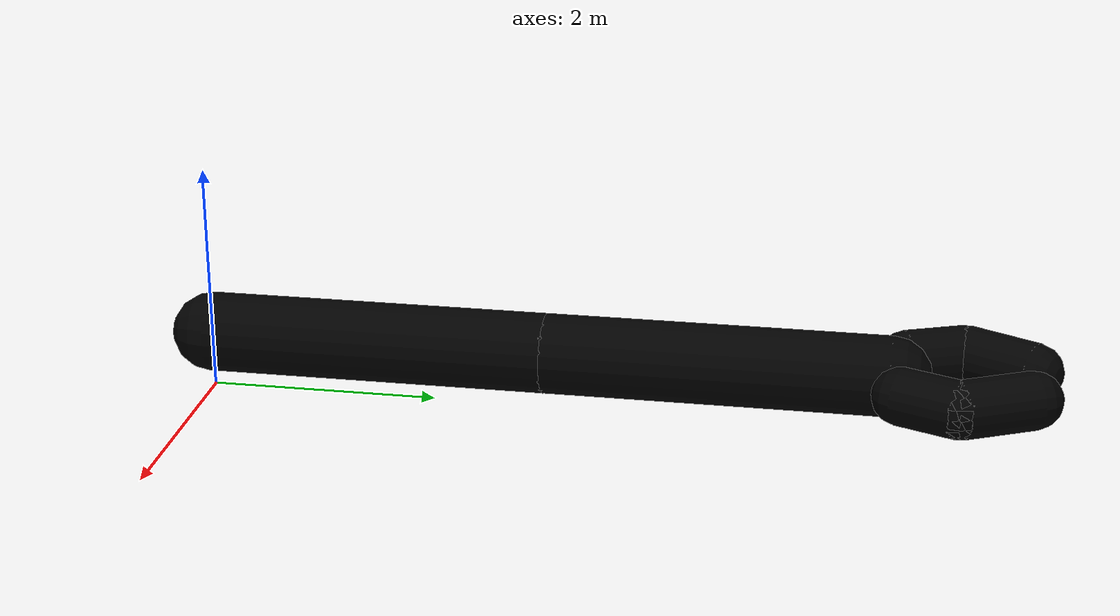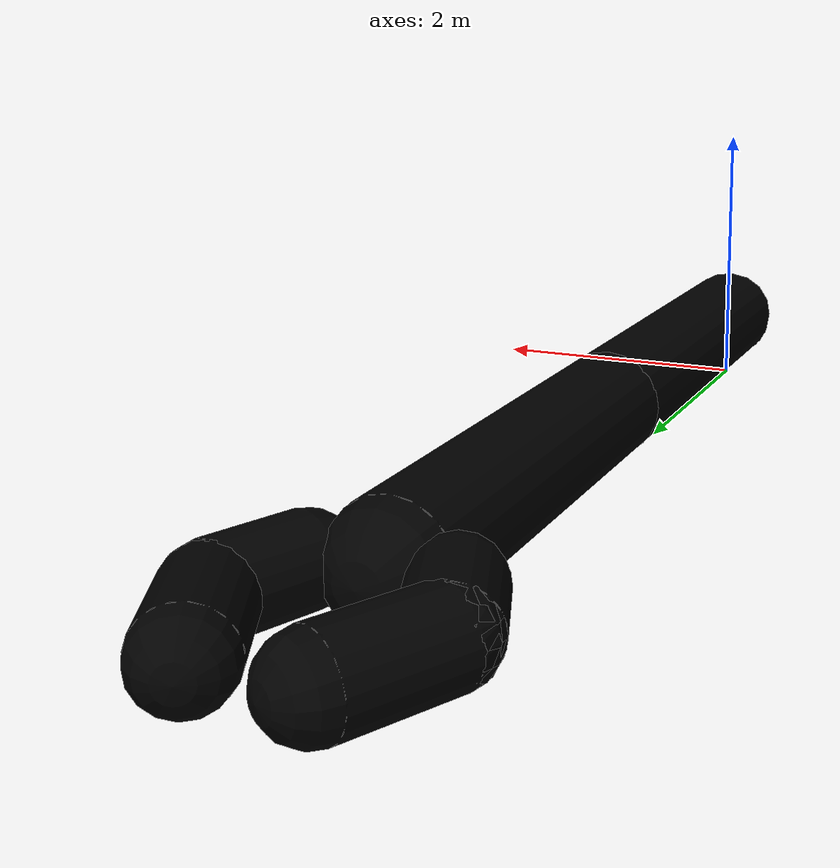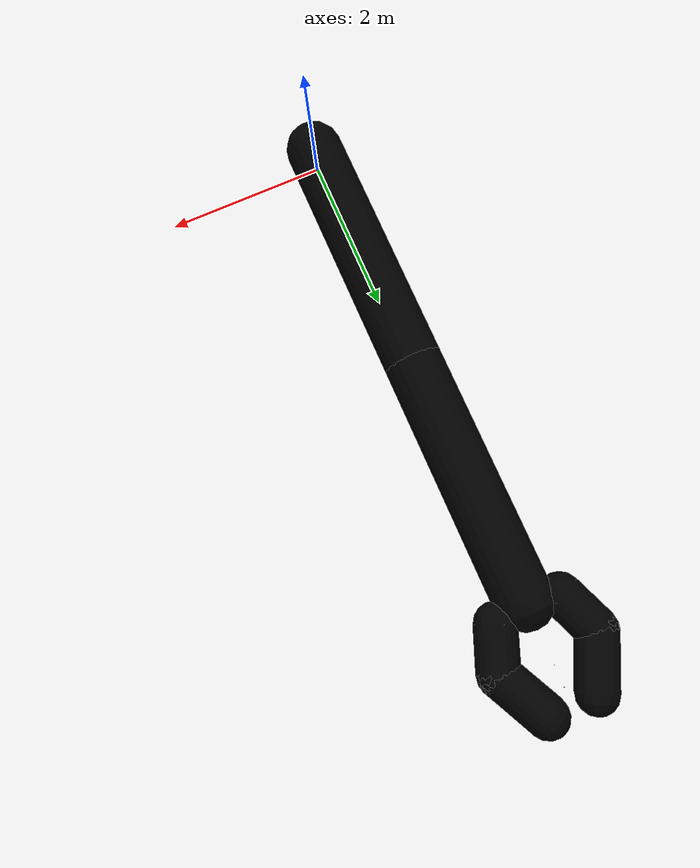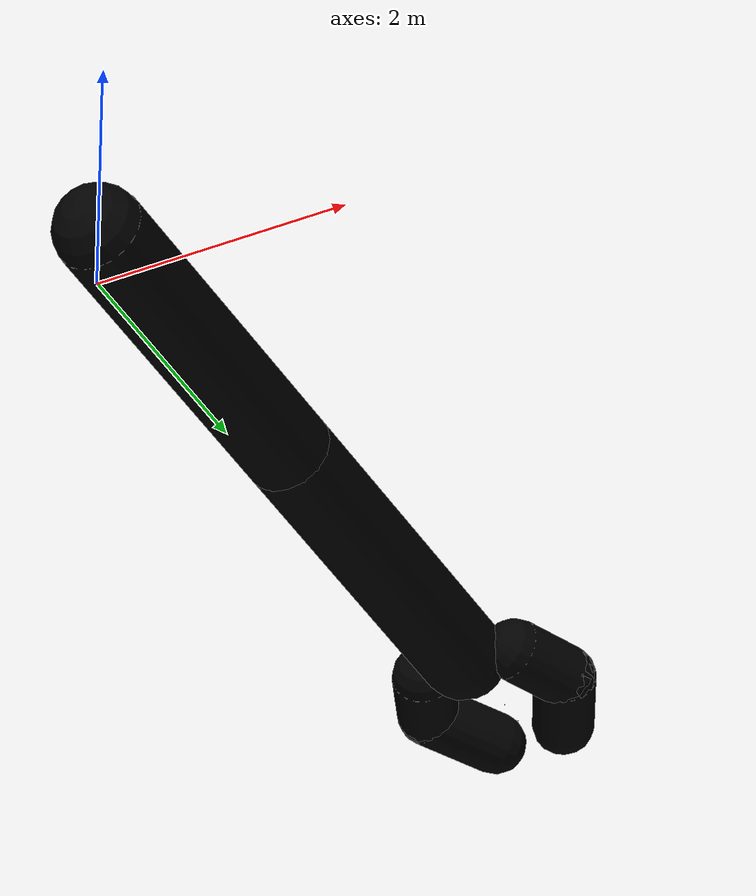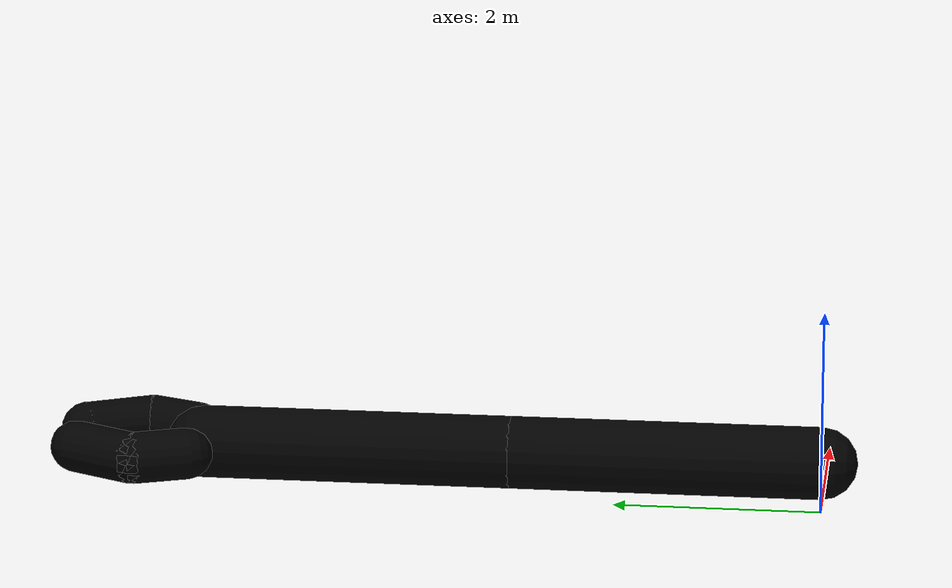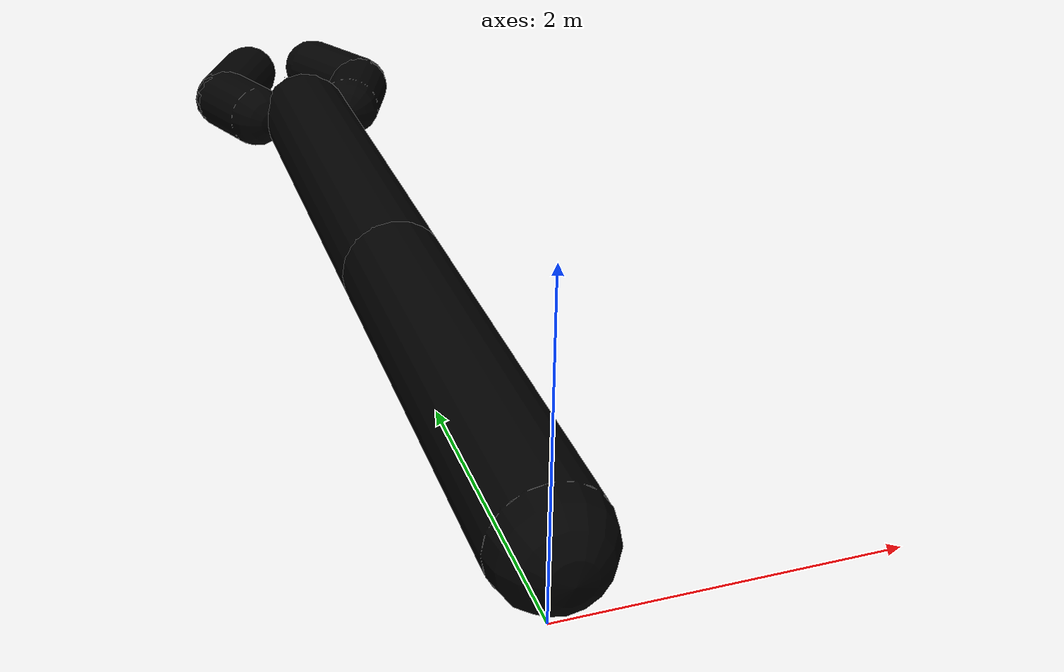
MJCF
<mujoco model="pr2_model">
    <worldbody name="base">
        <body name="pr2" pos="0 0 0.5">
            <body name="link1" pos="0 0 0">
                <joint axis="0 0 1" name="joint1" type="hinge" pos="0 0 0" limited="false"/>
                <geom name="armgeom1" type="capsule" size="0.35" fromto="0 0 0 0 3 0" rgba="0 0 0 1" conaffinity="0"/>
                <site name="link1_1" pos="0.105 0.5 0" zaxis="1 0 0" />
                <site name="link1_2" pos="-0.105 0.5 0" zaxis="-1 0 0" />
                <site name="link1_3" pos="0.105 1. 0" zaxis="1 0 0" />
                <site name="link1_4" pos="-0.105 1. 0" zaxis="-1 0 0" />
                <site name="link1_5" pos="-0.105 0.25 0" zaxis="-1 0 0" />
                <site name="link1_6" pos="-0.105 0.75 0" zaxis="-1 0 0" />
                <site name="link1_7" pos="0.105 0.25 0" zaxis="1 0 0" />
                <site name="link1_8" pos="0.105 0.75 0" zaxis="1 0 0" />

                <body name="link2" pos="0 3 0">
                    <joint axis="0 0 1" name="joint2" type="hinge" pos="0 0 0" limited="true" range="-3. 3."/>
                    <geom name="armgeom2" type="capsule" size="0.35" fromto="0 0 0 0 3 0"  rgba="0 0 0 1" conaffinity="0"/>
                    <site name="link2_1" pos="0.105 0.5 0" zaxis="1 0 0" />
                    <site name="link2_2" pos="-0.105 0.5 0" zaxis="-1 0 0" />
                    <site name="link2_3" pos="0.105 0.25 0" zaxis="1 0 0" />
                    <site name="link2_4" pos="-0.105 0.25 0" zaxis="-1 0 0" />
                    <site name="link2_5" pos="0.105 0.75 0" zaxis="1 0 0" />
                    <site name="link2_6" pos="-0.105 0.75 0" zaxis="-1 0 0" />
                    <body name="ee_base" pos="0 3. 0.">
                        <body name="ee" pos="0 0.55 0"></body>
                        <body name="ee_far" pos="0 2. 0"></body>
                        <geom name="ee_geom" type="sphere" size="0.2" rgba="0 0 0 1" conaffinity="0" pos="0 0 0"/>
                        <joint axis="0 0 1" name="wrist" type="hinge" pos="0 0 0" limited="true" range="-3 3"/>
                        <site name="ee_1" pos="0.21 0. 0" zaxis="1 0 0" />
                        <site name="ee_2" pos="-0.21 0. 0" zaxis="-1 0 0" />
                        <site name="ee_3" pos="0 0.205 0" zaxis="0 1 0" />
                        <site name="ee_4" pos="0 0.75 0" zaxis="0 1 0" />
                        <site name="ee_5" pos="0 1. 0" zaxis="0 1 0" />
                        <body name="right_finger" pos="-0.4 0.1 0" euler="0 0 0">
                            <site name="rf_1" pos="-0.25 0.4 0" zaxis="-1 0 0"/>
                            <site name="rf_2" pos="-0.1 0.2 0" zaxis="-1.5 -1 0"/>
                            <site name="rf_6" pos="-0.15 0.4 0" zaxis="1 0 0"/>
                            <joint name="right_finger_joint" axis="1 0 0" limited="true" range="-0.4 0.4" type="slide" solreflimit="0.02 0.25" solimplimit="0.99 1. 0.0001" pos="-0.2 0.5 0" margin="0.01" />
                            <geom pos="0 0 0" size="0.25" type="capsule" fromto="0 0 0 -0.2 0.5 0" friction="1.9 0.95 0.0005" rgba="0 0 0 1" conaffinity="0"/>
                            <body name="right_finger_tip" pos="-0.2 0.5 0" euler="0 0 0">
                                <site name="rf_3" pos="0.15 0.4 0" zaxis="-1 0 0"/>
                                <site name="rf_4" pos="0.2 0.4 0" zaxis="0 1 0"/>
                                <site name="rf_5" pos="0.1 0.2 0" zaxis="-1.5 1 0"/>
                                <geom pos="0 0 0" size="0.25" type="capsule" fromto="0 0 0 0.3 0.6 0" friction="1.9 0.95 0.0005" rgba="0 0 0 1" conaffinity="0"/>
                            </body>
                        </body>
                        <body name="left_finger" pos="0.4 0.1 0" euler="0 0 0.0">
                            <site name="lf_1" pos="0.25 0.4 0" zaxis="1 0 0"/>
                            <site name="lf_2" pos="0.1 0.2 0" zaxis="1.5 -1 0"/>
                            <site name="lf_6" pos="0.15 0.4 0" zaxis="-1 0 0"/>
                            <joint name="left_finger_joint" axis="-1 0 0" limited="true" range="-0.4 0.4" type="slide" solreflimit="0.02 0.25" solimplimit="0.99 1. 0.0001" pos="0.2 0.5 0" margin="0.01" />
                            <geom pos="0 0 0"  type="capsule" size="0.25" fromto="0 0 0 0.2 0.5 0" friction="1.9 0.95 0.0005" rgba="0 0 0 1" conaffinity="0"/>
                            <body name="left_finger_tip" pos="0.2 0.5 0" euler="0 0 0">
                                <site name="lf_3" pos="-0.15 0.4 0" zaxis="1 0 0"/>
                                <site name="lf_4" pos="-0.2 0.4 0" zaxis="0 1 0"/>
                                <site name="lf_5" pos="-0.1 0.2 0" zaxis="1.5 1 0"/>
                                <geom pos="0 0 0" size="0.25" type="capsule" fromto="0 0 0 -0.3 0.6 0" friction="1.9 0.95 0.0005" rgba="0 0 0 1" conaffinity="0"/>
                            </body>
                        </body>
                    </body>
                </body>
            </body>
        </body>
    </worldbody>

    <actuator>
        <velocity gear="24" kv="800" joint="joint1" name="joint1" ctrllimited="true" ctrlrange="-128 128" />
        <velocity gear="24" kv="800" joint="joint2" name="joint2" ctrllimited="true" ctrlrange="-128 128" />
        <velocity gear="12" kv="400" joint="wrist" name="wrist" ctrllimited="true" ctrlrange="-64 64" />
        <motor gear="128" joint="left_finger_joint" name="left_grip" ctrllimited="true" ctrlrange="-150 250" />
        <motor gear="128" joint="right_finger_joint" name="right_grip" ctrllimited="true" ctrlrange="-150 250" />
    </actuator>

    <sensor>
        <rangefinder name="lidar_1" site="link1_1" cutoff="2.5" />
        <rangefinder name="lidar_2" site="link1_2" cutoff="2.5" />
        <rangefinder name="lidar_3" site="link1_3" cutoff="2.5" />
        <rangefinder name="lidar_4" site="link1_4" cutoff="2.5" />
        <rangefinder name="lidar_5" site="link1_5" cutoff="2.5" />
        <rangefinder name="lidar_6" site="link1_6" cutoff="2.5" />
        <rangefinder name="lidar_7" site="link1_7" cutoff="2.5" />
        <rangefinder name="lidar_8" site="link1_8" cutoff="2.5" />

        <rangefinder name="lidar_9" site="link2_1" cutoff="2.5" />
        <rangefinder name="lidar_10" site="link2_2" cutoff="2.5" />
        <rangefinder name="lidar_11" site="link2_3" cutoff="2.5" />
        <rangefinder name="lidar_12" site="link2_4" cutoff="2.5" />
        <rangefinder name="lidar_13" site="link2_5" cutoff="2.5" />
        <rangefinder name="lidar_14" site="link2_6" cutoff="2.5" />

        <rangefinder name="lidar_15" site="ee_1" cutoff="2.5" />
        <rangefinder name="lidar_16" site="ee_2" cutoff="2.5" />
        <rangefinder name="lidar_17" site="ee_3" cutoff="2.5" />

        <rangefinder name="lidar_18" site="lf_1" cutoff="2.5" />
        <rangefinder name="lidar_19" site="lf_2" cutoff="2.5" />
        <rangefinder name="lidar_20" site="lf_3" cutoff="2.5" />
        <rangefinder name="lidar_21" site="lf_4" cutoff="2.5" />
        <rangefinder name="lidar_22" site="lf_5" cutoff="2.5" />
        <rangefinder name="lidar_23" site="lf_6" cutoff="2.5" />

        <rangefinder name="lidar_24" site="rf_1" cutoff="2.5" />
        <rangefinder name="lidar_25" site="rf_2" cutoff="2.5" />
        <rangefinder name="lidar_26" site="rf_3" cutoff="2.5" />
        <rangefinder name="lidar_27" site="rf_4" cutoff="2.5" />
        <rangefinder name="lidar_28" site="rf_5" cutoff="2.5" />
        <rangefinder name="lidar_29" site="rf_6" cutoff="2.5" />

        <rangefinder name="lidar_30" site="ee_4" cutoff="2.5" />
        <rangefinder name="lidar_31" site="ee_5" cutoff="2.5" />
    </sensor>
</mujoco>
